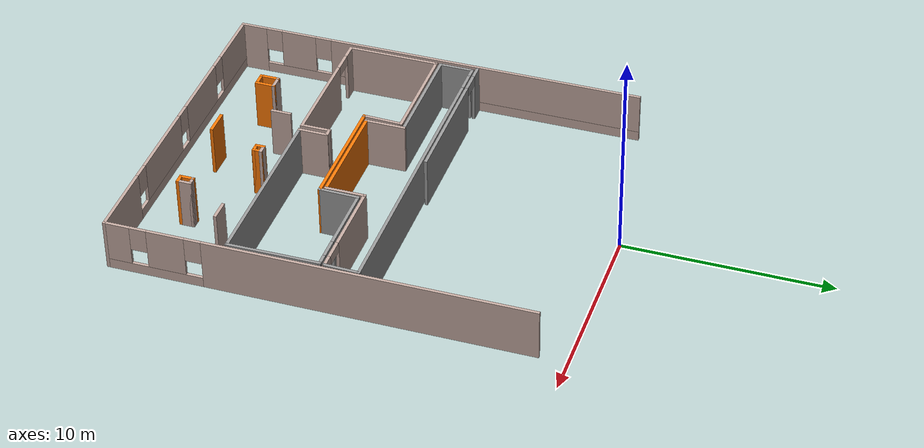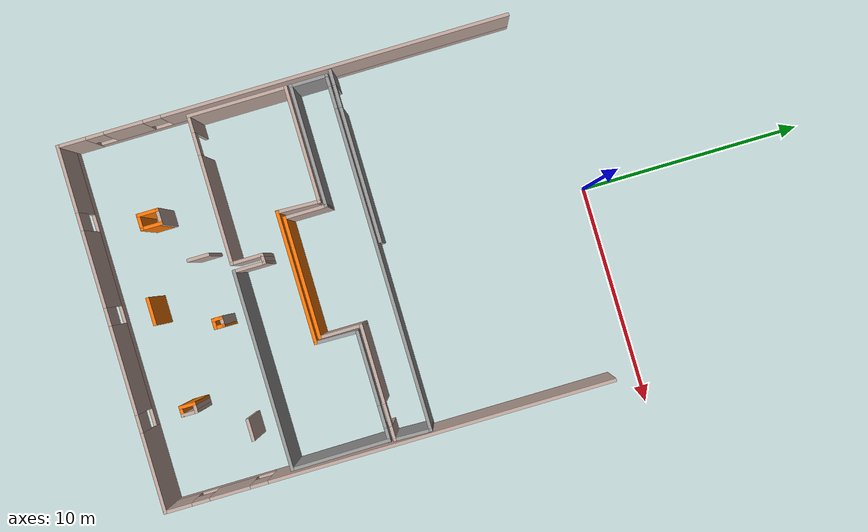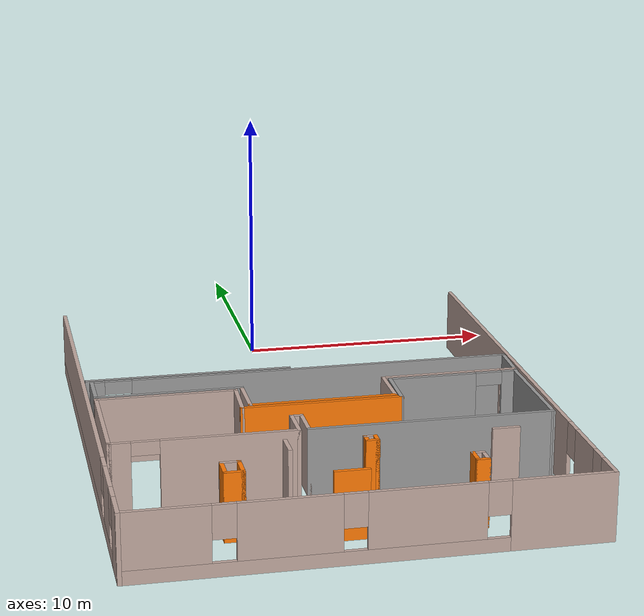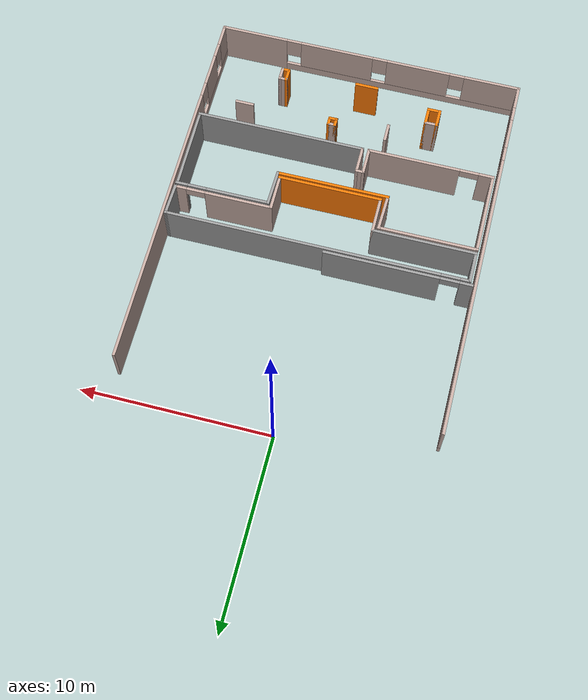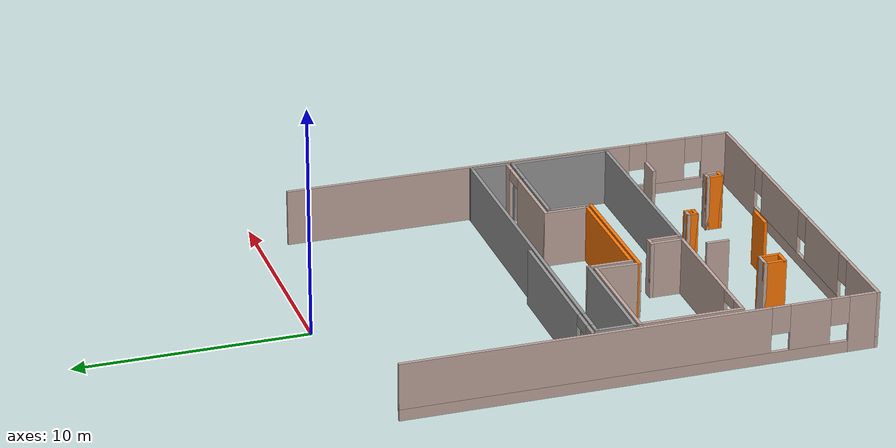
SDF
<sdf version="1.6">
 <model name="Testhaus1">
  <pose>0.163791 -11.4063 0 0 -0 0</pose>
  <link name="Wall_42">
   <pose>-4.19834 2.07704 0 0 -0 3.14159</pose>
   <visual name="Wall_42_Visual_0">
    <pose>-0.852164 0 1.25 0 -0 0</pose>
    <geometry><box><size>6.04567 0.15 2.5</size></box></geometry>
    <material>
     <script><uri>file://media/materials/scripts/gazebo.material</uri><name>Gazebo/Grey</name></script>
     <ambient>1 1 1 1</ambient>
    </material>
    <meta><layer>0</layer></meta>
   </visual>
   <collision name="Wall_42_Collision_0">
    <geometry><box><size>6.04567 0.15 2.5</size></box></geometry>
    <pose>-0.852164 0 1.25 0 -0 0</pose>
   </collision>
   <visual name="Wall_42_Visual_1">
    <pose>3.52284 0 1.25 0 -0 0</pose>
    <geometry><box><size>0.704328 0.15 2.5</size></box></geometry>
    <material>
     <script><uri>file://media/materials/scripts/gazebo.material</uri><name>Gazebo/Grey</name></script>
     <ambient>1 1 1 1</ambient>
    </material>
    <meta><layer>0</layer></meta>
   </visual>
   <collision name="Wall_42_Collision_1">
    <geometry><box><size>0.704328 0.15 2.5</size></box></geometry>
    <pose>3.52284 0 1.25 0 -0 0</pose>
   </collision>
   <visual name="Wall_42_Visual_2">
    <pose>2.67067 0 2.25 0 -0 0</pose>
    <geometry><box><size>1 0.15 0.5</size></box></geometry>
    <material>
     <script><uri>file://media/materials/scripts/gazebo.material</uri><name>Gazebo/Grey</name></script>
     <ambient>1 1 1 1</ambient>
    </material>
    <meta><layer>0</layer></meta>
   </visual>
   <collision name="Wall_42_Collision_2">
    <geometry><box><size>1 0.15 0.5</size></box></geometry>
    <pose>2.67067 0 2.25 0 -0 0</pose>
   </collision>
  </link>
  <link name="Wall_46">
   <pose>0.074614 1.86968 0 0 -0 3.14159</pose>
   <visual name="Wall_46_Visual_0">
    <pose>-0.778187 0 1.25 0 -0 0</pose>
    <geometry><box><size>14.4436 0.15 2.5</size></box></geometry>
    <material>
     <script><uri>file://media/materials/scripts/gazebo.material</uri><name>Gazebo/Grey</name></script>
     <ambient>1 1 1 1</ambient>
    </material>
    <meta><layer>0</layer></meta>
   </visual>
   <collision name="Wall_46_Collision_0">
    <geometry><box><size>14.4436 0.15 2.5</size></box></geometry>
    <pose>-0.778187 0 1.25 0 -0 0</pose>
   </collision>
   <visual name="Wall_46_Visual_1">
    <pose>7.72181 0 1.25 0 -0 0</pose>
    <geometry><box><size>0.556373 0.15 2.5</size></box></geometry>
    <material>
     <script><uri>file://media/materials/scripts/gazebo.material</uri><name>Gazebo/Grey</name></script>
     <ambient>1 1 1 1</ambient>
    </material>
    <meta><layer>0</layer></meta>
   </visual>
   <collision name="Wall_46_Collision_1">
    <geometry><box><size>0.556373 0.15 2.5</size></box></geometry>
    <pose>7.72181 0 1.25 0 -0 0</pose>
   </collision>
   <visual name="Wall_46_Visual_2">
    <pose>6.94363 0 2.25 0 -0 0</pose>
    <geometry><box><size>1 0.15 0.5</size></box></geometry>
    <material>
     <script><uri>file://media/materials/scripts/gazebo.material</uri><name>Gazebo/Grey</name></script>
     <ambient>1 1 1 1</ambient>
    </material>
    <meta><layer>0</layer></meta>
   </visual>
   <collision name="Wall_46_Collision_2">
    <geometry><box><size>1 0.15 0.5</size></box></geometry>
    <pose>6.94363 0 2.25 0 -0 0</pose>
   </collision>
  </link>
  <link name="Wall_47">
   <collision name="Wall_47_Collision">
    <geometry><box><size>1.75 0.15 2.5</size></box></geometry>
    <pose>0 0 1.25 0 -0 0</pose>
   </collision>
   <visual name="Wall_47_Visual">
    <pose>0 0 1.25 0 -0 0</pose>
    <geometry><box><size>1.75 0.15 2.5</size></box></geometry>
    <material>
     <script><uri>file://media/materials/scripts/gazebo.material</uri><name>Gazebo/Grey</name></script>
     <ambient>1 1 1 1</ambient>
    </material>
    <meta><layer>0</layer></meta>
   </visual>
   <pose>-7.85039 1.06968 0 0 -0 -1.5708</pose>
  </link>
  <link name="Wall_48">
   <collision name="Wall_48_Collision">
    <geometry><box><size>5.5 0.15 2.5</size></box></geometry>
    <pose>0 0 1.25 0 -0 0</pose>
   </collision>
   <visual name="Wall_48_Visual">
    <pose>0 0 1.25 0 -0 0</pose>
    <geometry><box><size>5.5 0.15 2.5</size></box></geometry>
    <material>
     <script><uri>file://media/materials/scripts/gazebo.material</uri><name>Gazebo/Grey</name></script>
     <ambient>1 1 1 1</ambient>
    </material>
    <meta><layer>0</layer></meta>
   </visual>
   <pose>-5.17539 0.269681 0 0 -0 0</pose>
  </link>
  <link name="Wall_49">
   <collision name="Wall_49_Collision">
    <geometry><box><size>2 0.15 2.5</size></box></geometry>
    <pose>0 0 1.25 0 -0 0</pose>
   </collision>
   <visual name="Wall_49_Visual">
    <pose>0 0 1.25 0 -0 0</pose>
    <geometry><box><size>2 0.15 2.5</size></box></geometry>
    <material>
     <script><uri>file://media/materials/scripts/gazebo.material</uri><name>Gazebo/Grey</name></script>
     <ambient>0.760784 0.662745 0.627451 1</ambient>
    </material>
    <meta><layer>0</layer></meta>
   </visual>
   <pose>-2.50039 -0.655319 0 0 -0 -1.5708</pose>
  </link>
  <link name="Wall_5">
   <pose>8.175 0 0 0 -0 -1.5708</pose>
   <visual name="Wall_5_Visual_0">
    <pose>-2.33962 0 1.25 0 -0 0</pose>
    <geometry><box><size>15.5708 0.15 2.5</size></box></geometry>
    <material>
     <script><uri>file://media/materials/scripts/gazebo.material</uri><name>Gazebo/Grey</name></script>
     <ambient>0.760784 0.662745 0.627451 1</ambient>
    </material>
    <meta><layer>0</layer></meta>
   </visual>
   <collision name="Wall_5_Collision_0">
    <geometry><box><size>15.5708 0.15 2.5</size></box></geometry>
    <pose>-2.33962 0 1.25 0 -0 0</pose>
   </collision>
   <visual name="Wall_5_Visual_1">
    <pose>7.78538 0 0.25 0 -0 0</pose>
    <geometry><box><size>4.67924 0.15 0.5</size></box></geometry>
    <material>
     <script><uri>file://media/materials/scripts/gazebo.material</uri><name>Gazebo/Grey</name></script>
     <ambient>0.760784 0.662745 0.627451 1</ambient>
    </material>
    <meta><layer>0</layer></meta>
   </visual>
   <collision name="Wall_5_Collision_1">
    <geometry><box><size>4.67924 0.15 0.5</size></box></geometry>
    <pose>7.78538 0 0.25 0 -0 0</pose>
   </collision>
   <visual name="Wall_5_Visual_2">
    <pose>7.14918 0 1.5 0 -0 0</pose>
    <geometry><box><size>1.80682 0.15 2</size></box></geometry>
    <material>
     <script><uri>file://media/materials/scripts/gazebo.material</uri><name>Gazebo/Grey</name></script>
     <ambient>0.760784 0.662745 0.627451 1</ambient>
    </material>
    <meta><layer>0</layer></meta>
   </visual>
   <collision name="Wall_5_Collision_2">
    <geometry><box><size>1.80682 0.15 2</size></box></geometry>
    <pose>7.14918 0 1.5 0 -0 0</pose>
   </collision>
   <visual name="Wall_5_Visual_3">
    <pose>9.48879 0 1.5 0 -0 0</pose>
    <geometry><box><size>1.27241 0.15 2</size></box></geometry>
    <material>
     <script><uri>file://media/materials/scripts/gazebo.material</uri><name>Gazebo/Grey</name></script>
     <ambient>0.760784 0.662745 0.627451 1</ambient>
    </material>
    <meta><layer>0</layer></meta>
   </visual>
   <collision name="Wall_5_Collision_3">
    <geometry><box><size>1.27241 0.15 2</size></box></geometry>
    <pose>9.48879 0 1.5 0 -0 0</pose>
   </collision>
   <visual name="Wall_5_Visual_4">
    <pose>5.84577 0 1.9 0 -0 0</pose>
    <geometry><box><size>0.8 0.15 1.2</size></box></geometry>
    <material>
     <script><uri>file://media/materials/scripts/gazebo.material</uri><name>Gazebo/Grey</name></script>
     <ambient>0.760784 0.662745 0.627451 1</ambient>
    </material>
    <meta><layer>0</layer></meta>
   </visual>
   <collision name="Wall_5_Collision_4">
    <geometry><box><size>0.8 0.15 1.2</size></box></geometry>
    <pose>5.84577 0 1.9 0 -0 0</pose>
   </collision>
   <visual name="Wall_5_Visual_5">
    <pose>8.45259 0 1.9 0 -0 0</pose>
    <geometry><box><size>0.8 0.15 1.2</size></box></geometry>
    <material>
     <script><uri>file://media/materials/scripts/gazebo.material</uri><name>Gazebo/Grey</name></script>
     <ambient>0.760784 0.662745 0.627451 1</ambient>
    </material>
    <meta><layer>0</layer></meta>
   </visual>
   <collision name="Wall_5_Collision_5">
    <geometry><box><size>0.8 0.15 1.2</size></box></geometry>
    <pose>8.45259 0 1.9 0 -0 0</pose>
   </collision>
  </link>
  <link name="Wall_50">
   <collision name="Wall_50_Collision">
    <geometry><box><size>5.5 0.15 2.5</size></box></geometry>
    <pose>0 0 1.25 0 -0 0</pose>
   </collision>
   <visual name="Wall_50_Visual">
    <pose>0 0 1.25 0 -0 0</pose>
    <geometry><box><size>5.5 0.15 2.5</size></box></geometry>
    <material>
     <script><uri>file://media/materials/scripts/gazebo.material</uri><name>Gazebo/Grey</name></script>
     <ambient>0.996078 0.47451 0.0196078 1</ambient>
    </material>
    <meta><layer>0</layer></meta>
   </visual>
   <pose>0.174614 -1.58032 0 0 -0 0</pose>
  </link>
  <link name="Wall_51">
   <collision name="Wall_51_Collision">
    <geometry><box><size>2 0.15 2.5</size></box></geometry>
    <pose>0 0 1.25 0 -0 0</pose>
   </collision>
   <visual name="Wall_51_Visual">
    <pose>0 0 1.25 0 -0 0</pose>
    <geometry><box><size>2 0.15 2.5</size></box></geometry>
    <material>
     <script><uri>file://media/materials/scripts/gazebo.material</uri><name>Gazebo/Grey</name></script>
     <ambient>0.760784 0.662745 0.627451 1</ambient>
    </material>
    <meta><layer>0</layer></meta>
   </visual>
   <pose>2.84961 -0.655319 0 0 -0 1.5708</pose>
  </link>
  <link name="Wall_52">
   <pose>5.39961 0.269681 0 0 -0 0</pose>
   <visual name="Wall_52_Visual_0">
    <pose>-0.83176 0 1.25 0 -0 0</pose>
    <geometry><box><size>3.58648 0.15 2.5</size></box></geometry>
    <material>
     <script><uri>file://media/materials/scripts/gazebo.material</uri><name>Gazebo/Grey</name></script>
     <ambient>0.760784 0.662745 0.627451 1</ambient>
    </material>
    <meta><layer>0</layer></meta>
   </visual>
   <collision name="Wall_52_Collision_0">
    <geometry><box><size>3.58648 0.15 2.5</size></box></geometry>
    <pose>-0.83176 0 1.25 0 -0 0</pose>
   </collision>
   <visual name="Wall_52_Visual_1">
    <pose>2.29324 0 1.25 0 -0 0</pose>
    <geometry><box><size>0.663519 0.15 2.5</size></box></geometry>
    <material>
     <script><uri>file://media/materials/scripts/gazebo.material</uri><name>Gazebo/Grey</name></script>
     <ambient>0.760784 0.662745 0.627451 1</ambient>
    </material>
    <meta><layer>0</layer></meta>
   </visual>
   <collision name="Wall_52_Collision_1">
    <geometry><box><size>0.663519 0.15 2.5</size></box></geometry>
    <pose>2.29324 0 1.25 0 -0 0</pose>
   </collision>
   <visual name="Wall_52_Visual_2">
    <pose>1.46148 0 2.25 0 -0 0</pose>
    <geometry><box><size>1 0.15 0.5</size></box></geometry>
    <material>
     <script><uri>file://media/materials/scripts/gazebo.material</uri><name>Gazebo/Grey</name></script>
     <ambient>0.760784 0.662745 0.627451 1</ambient>
    </material>
    <meta><layer>0</layer></meta>
   </visual>
   <collision name="Wall_52_Collision_2">
    <geometry><box><size>1 0.15 0.5</size></box></geometry>
    <pose>1.46148 0 2.25 0 -0 0</pose>
   </collision>
  </link>
  <link name="Wall_53">
   <collision name="Wall_53_Collision">
    <geometry><box><size>1.75078 0.15 2.5</size></box></geometry>
    <pose>0 0 1.25 0 -0 0</pose>
   </collision>
   <visual name="Wall_53_Visual">
    <pose>0 0 1.25 0 -0 0</pose>
    <geometry><box><size>1.75078 0.15 2.5</size></box></geometry>
    <material>
     <script><uri>file://media/materials/scripts/gazebo.material</uri><name>Gazebo/Grey</name></script>
     <ambient>1 1 1 1</ambient>
    </material>
    <meta><layer>0</layer></meta>
   </visual>
   <pose>7.97461 1.06968 0 0 -0 1.53956</pose>
  </link>
  <link name="Wall_56">
   <collision name="Wall_56_Collision">
    <geometry><box><size>5.25 0.15 2.5</size></box></geometry>
    <pose>0 0 1.25 0 -0 0</pose>
   </collision>
   <visual name="Wall_56_Visual">
    <pose>0 0 1.25 0 -0 0</pose>
    <geometry><box><size>5.25 0.15 2.5</size></box></geometry>
    <material>
     <script><uri>file://media/materials/scripts/gazebo.material</uri><name>Gazebo/Grey</name></script>
     <ambient>0.760784 0.662745 0.627451 1</ambient>
    </material>
    <meta><layer>0</layer></meta>
   </visual>
   <pose>-5.31111 0.045204 0 0 -0 3.14159</pose>
  </link>
  <link name="Wall_57">
   <collision name="Wall_57_Collision">
    <geometry><box><size>4.5 0.15 2.5</size></box></geometry>
    <pose>0 0 1.25 0 -0 0</pose>
   </collision>
   <visual name="Wall_57_Visual">
    <pose>0 0 1.25 0 -0 0</pose>
    <geometry><box><size>4.5 0.15 2.5</size></box></geometry>
    <material>
     <script><uri>file://media/materials/scripts/gazebo.material</uri><name>Gazebo/Grey</name></script>
     <ambient>0.760784 0.662745 0.627451 1</ambient>
    </material>
    <meta><layer>0</layer></meta>
   </visual>
   <pose>-7.86111 -2.1298 0 0 -0 -1.5708</pose>
  </link>
  <link name="Wall_58">
   <pose>-4.56111 -4.3048 0 0 -0 0</pose>
   <visual name="Wall_58_Visual_0">
    <pose>-2.96185 0 1.25 0 -0 0</pose>
    <geometry><box><size>0.826301 0.15 2.5</size></box></geometry>
    <material>
     <script><uri>file://media/materials/scripts/gazebo.material</uri><name>Gazebo/Grey</name></script>
     <ambient>0.760784 0.662745 0.627451 1</ambient>
    </material>
    <meta><layer>0</layer></meta>
   </visual>
   <collision name="Wall_58_Collision_0">
    <geometry><box><size>0.826301 0.15 2.5</size></box></geometry>
    <pose>-2.96185 0 1.25 0 -0 0</pose>
   </collision>
   <visual name="Wall_58_Visual_1">
    <pose>0.913151 0 1.25 0 -0 0</pose>
    <geometry><box><size>4.9237 0.15 2.5</size></box></geometry>
    <material>
     <script><uri>file://media/materials/scripts/gazebo.material</uri><name>Gazebo/Grey</name></script>
     <ambient>0.760784 0.662745 0.627451 1</ambient>
    </material>
    <meta><layer>0</layer></meta>
   </visual>
   <collision name="Wall_58_Collision_1">
    <geometry><box><size>4.9237 0.15 2.5</size></box></geometry>
    <pose>0.913151 0 1.25 0 -0 0</pose>
   </collision>
   <visual name="Wall_58_Visual_2">
    <pose>-2.0487 0 2.25 0 -0 0</pose>
    <geometry><box><size>1 0.15 0.5</size></box></geometry>
    <material>
     <script><uri>file://media/materials/scripts/gazebo.material</uri><name>Gazebo/Grey</name></script>
     <ambient>0.760784 0.662745 0.627451 1</ambient>
    </material>
    <meta><layer>0</layer></meta>
   </visual>
   <collision name="Wall_58_Collision_2">
    <geometry><box><size>1 0.15 0.5</size></box></geometry>
    <pose>-2.0487 0 2.25 0 -0 0</pose>
   </collision>
  </link>
  <link name="Wall_59">
   <collision name="Wall_59_Collision">
    <geometry><box><size>1.5 0.15 2.5</size></box></geometry>
    <pose>0 0 1.25 0 -0 0</pose>
   </collision>
   <visual name="Wall_59_Visual">
    <pose>0 0 1.25 0 -0 0</pose>
    <geometry><box><size>1.5 0.15 2.5</size></box></geometry>
    <material>
     <script><uri>file://media/materials/scripts/gazebo.material</uri><name>Gazebo/Grey</name></script>
     <ambient>0.760784 0.662745 0.627451 1</ambient>
    </material>
    <meta><layer>0</layer></meta>
   </visual>
   <pose>-1.2611 -3.6298 0 0 -0 1.5708</pose>
  </link>
  <link name="Wall_6">
   <pose>-0 -10.05 0 0 -0 3.14159</pose>
   <visual name="Wall_6_Visual_0">
    <pose>-6.43863 0 1.25 0 -0 0</pose>
    <geometry><box><size>3.62273 0.15 2.5</size></box></geometry>
    <material>
     <script><uri>file://media/materials/scripts/gazebo.material</uri><name>Gazebo/Grey</name></script>
     <ambient>0.760784 0.662745 0.627451 1</ambient>
    </material>
    <meta><layer>0</layer></meta>
   </visual>
   <collision name="Wall_6_Collision_0">
    <geometry><box><size>3.62273 0.15 2.5</size></box></geometry>
    <pose>-6.43863 0 1.25 0 -0 0</pose>
   </collision>
   <visual name="Wall_6_Visual_1">
    <pose>1.81137 0 0.25 0 -0 0</pose>
    <geometry><box><size>12.8773 0.15 0.5</size></box></geometry>
    <material>
     <script><uri>file://media/materials/scripts/gazebo.material</uri><name>Gazebo/Grey</name></script>
     <ambient>0.760784 0.662745 0.627451 1</ambient>
    </material>
    <meta><layer>0</layer></meta>
   </visual>
   <collision name="Wall_6_Collision_1">
    <geometry><box><size>12.8773 0.15 0.5</size></box></geometry>
    <pose>1.81137 0 0.25 0 -0 0</pose>
   </collision>
   <visual name="Wall_6_Visual_2">
    <pose>-1.83325 0 1.5 0 -0 0</pose>
    <geometry><box><size>3.98804 0.15 2</size></box></geometry>
    <material>
     <script><uri>file://media/materials/scripts/gazebo.material</uri><name>Gazebo/Grey</name></script>
     <ambient>0.760784 0.662745 0.627451 1</ambient>
    </material>
    <meta><layer>0</layer></meta>
   </visual>
   <collision name="Wall_6_Collision_2">
    <geometry><box><size>3.98804 0.15 2</size></box></geometry>
    <pose>-1.83325 0 1.5 0 -0 0</pose>
   </collision>
   <visual name="Wall_6_Visual_3">
    <pose>2.68878 0 1.5 0 -0 0</pose>
    <geometry><box><size>3.45603 0.15 2</size></box></geometry>
    <material>
     <script><uri>file://media/materials/scripts/gazebo.material</uri><name>Gazebo/Grey</name></script>
     <ambient>0.760784 0.662745 0.627451 1</ambient>
    </material>
    <meta><layer>0</layer></meta>
   </visual>
   <collision name="Wall_6_Collision_3">
    <geometry><box><size>3.45603 0.15 2</size></box></geometry>
    <pose>2.68878 0 1.5 0 -0 0</pose>
   </collision>
   <visual name="Wall_6_Visual_4">
    <pose>6.7334 0 1.5 0 -0 0</pose>
    <geometry><box><size>3.0332 0.15 2</size></box></geometry>
    <material>
     <script><uri>file://media/materials/scripts/gazebo.material</uri><name>Gazebo/Grey</name></script>
     <ambient>0.760784 0.662745 0.627451 1</ambient>
    </material>
    <meta><layer>0</layer></meta>
   </visual>
   <collision name="Wall_6_Collision_4">
    <geometry><box><size>3.0332 0.15 2</size></box></geometry>
    <pose>6.7334 0 1.5 0 -0 0</pose>
   </collision>
   <visual name="Wall_6_Visual_5">
    <pose>-4.22727 0 1.9 0 -0 0</pose>
    <geometry><box><size>0.8 0.15 1.2</size></box></geometry>
    <material>
     <script><uri>file://media/materials/scripts/gazebo.material</uri><name>Gazebo/Grey</name></script>
     <ambient>0.760784 0.662745 0.627451 1</ambient>
    </material>
    <meta><layer>0</layer></meta>
   </visual>
   <collision name="Wall_6_Collision_5">
    <geometry><box><size>0.8 0.15 1.2</size></box></geometry>
    <pose>-4.22727 0 1.9 0 -0 0</pose>
   </collision>
   <visual name="Wall_6_Visual_6">
    <pose>0.560768 0 1.9 0 -0 0</pose>
    <geometry><box><size>0.8 0.15 1.2</size></box></geometry>
    <material>
     <script><uri>file://media/materials/scripts/gazebo.material</uri><name>Gazebo/Grey</name></script>
     <ambient>0.760784 0.662745 0.627451 1</ambient>
    </material>
    <meta><layer>0</layer></meta>
   </visual>
   <collision name="Wall_6_Collision_6">
    <geometry><box><size>0.8 0.15 1.2</size></box></geometry>
    <pose>0.560768 0 1.9 0 -0 0</pose>
   </collision>
   <visual name="Wall_6_Visual_7">
    <pose>4.8168 0 1.9 0 -0 0</pose>
    <geometry><box><size>0.8 0.15 1.2</size></box></geometry>
    <material>
     <script><uri>file://media/materials/scripts/gazebo.material</uri><name>Gazebo/Grey</name></script>
     <ambient>0.760784 0.662745 0.627451 1</ambient>
    </material>
    <meta><layer>0</layer></meta>
   </visual>
   <collision name="Wall_6_Collision_7">
    <geometry><box><size>0.8 0.15 1.2</size></box></geometry>
    <pose>4.8168 0 1.9 0 -0 0</pose>
   </collision>
  </link>
  <link name="Wall_60">
   <collision name="Wall_60_Collision">
    <geometry><box><size>0.5 0.15 2.5</size></box></geometry>
    <pose>0 0 1.25 0 -0 0</pose>
   </collision>
   <visual name="Wall_60_Visual">
    <pose>0 0 1.25 0 -0 0</pose>
    <geometry><box><size>0.5 0.15 2.5</size></box></geometry>
    <material>
     <script><uri>file://media/materials/scripts/gazebo.material</uri><name>Gazebo/Grey</name></script>
     <ambient>0.760784 0.662745 0.627451 1</ambient>
    </material>
    <meta><layer>0</layer></meta>
   </visual>
   <pose>-1.08611 -2.9548 0 0 -0 0</pose>
  </link>
  <link name="Wall_61">
   <collision name="Wall_61_Collision">
    <geometry><box><size>1.5 0.15 2.5</size></box></geometry>
    <pose>0 0 1.25 0 -0 0</pose>
   </collision>
   <visual name="Wall_61_Visual">
    <pose>0 0 1.25 0 -0 0</pose>
    <geometry><box><size>1.5 0.15 2.5</size></box></geometry>
    <material>
     <script><uri>file://media/materials/scripts/gazebo.material</uri><name>Gazebo/Grey</name></script>
     <ambient>0.760784 0.662745 0.627451 1</ambient>
    </material>
    <meta><layer>0</layer></meta>
   </visual>
   <pose>-0.911105 -3.6298 0 0 -0 -1.5708</pose>
  </link>
  <link name="Wall_62">
   <collision name="Wall_62_Collision">
    <geometry><box><size>9 0.15 2.5</size></box></geometry>
    <pose>0 0 1.25 0 -0 0</pose>
   </collision>
   <visual name="Wall_62_Visual">
    <pose>0 0 1.25 0 -0 0</pose>
    <geometry><box><size>9 0.15 2.5</size></box></geometry>
    <material>
     <script><uri>file://media/materials/scripts/gazebo.material</uri><name>Gazebo/Grey</name></script>
     <ambient>1 1 1 1</ambient>
    </material>
    <meta><layer>0</layer></meta>
   </visual>
   <pose>3.5139 -4.3048 0 0 -0 0</pose>
  </link>
  <link name="Wall_65">
   <collision name="Wall_65_Collision">
    <geometry><box><size>4.49345 0.15 2.5</size></box></geometry>
    <pose>0 0 1.25 0 -0 0</pose>
   </collision>
   <visual name="Wall_65_Visual">
    <pose>0 0 1.25 0 -0 0</pose>
    <geometry><box><size>4.49345 0.15 2.5</size></box></geometry>
    <material>
     <script><uri>file://media/materials/scripts/gazebo.material</uri><name>Gazebo/Grey</name></script>
     <ambient>1 1 1 1</ambient>
    </material>
    <meta><layer>0</layer></meta>
   </visual>
   <pose>7.92369 -2.13313 0 0 -0 1.5778</pose>
  </link>
  <link name="Wall_66">
   <pose>5.51389 0.038544 0 0 -0 3.14159</pose>
   <visual name="Wall_66_Visual_0">
    <pose>-2.1736 0 1.25 0 -0 0</pose>
    <geometry><box><size>0.6528 0.15 2.5</size></box></geometry>
    <material>
     <script><uri>file://media/materials/scripts/gazebo.material</uri><name>Gazebo/Grey</name></script>
     <ambient>1 1 1 1</ambient>
    </material>
    <meta><layer>0</layer></meta>
   </visual>
   <collision name="Wall_66_Collision_0">
    <geometry><box><size>0.6528 0.15 2.5</size></box></geometry>
    <pose>-2.1736 0 1.25 0 -0 0</pose>
   </collision>
   <visual name="Wall_66_Visual_1">
    <pose>0.8264 0 1.25 0 -0 0</pose>
    <geometry><box><size>3.3472 0.15 2.5</size></box></geometry>
    <material>
     <script><uri>file://media/materials/scripts/gazebo.material</uri><name>Gazebo/Grey</name></script>
     <ambient>1 1 1 1</ambient>
    </material>
    <meta><layer>0</layer></meta>
   </visual>
   <collision name="Wall_66_Collision_1">
    <geometry><box><size>3.3472 0.15 2.5</size></box></geometry>
    <pose>0.8264 0 1.25 0 -0 0</pose>
   </collision>
   <visual name="Wall_66_Visual_2">
    <pose>-1.3472 0 2.25 0 -0 0</pose>
    <geometry><box><size>1 0.15 0.5</size></box></geometry>
    <material>
     <script><uri>file://media/materials/scripts/gazebo.material</uri><name>Gazebo/Grey</name></script>
     <ambient>1 1 1 1</ambient>
    </material>
    <meta><layer>0</layer></meta>
   </visual>
   <collision name="Wall_66_Collision_2">
    <geometry><box><size>1 0.15 0.5</size></box></geometry>
    <pose>-1.3472 0 2.25 0 -0 0</pose>
   </collision>
  </link>
  <link name="Wall_67">
   <collision name="Wall_67_Collision">
    <geometry><box><size>1.99335 0.15 2.5</size></box></geometry>
    <pose>0 0 1.25 0 -0 0</pose>
   </collision>
   <visual name="Wall_67_Visual">
    <pose>0 0 1.25 0 -0 0</pose>
    <geometry><box><size>1.99335 0.15 2.5</size></box></geometry>
    <material>
     <script><uri>file://media/materials/scripts/gazebo.material</uri><name>Gazebo/Grey</name></script>
     <ambient>1 1 1 1</ambient>
    </material>
    <meta><layer>0</layer></meta>
   </visual>
   <pose>3.03871 -0.883126 0 0 -0 -1.59224</pose>
  </link>
  <link name="Wall_68">
   <collision name="Wall_68_Collision">
    <geometry><box><size>6 0.15 2.5</size></box></geometry>
    <pose>0 0 1.25 0 -0 0</pose>
   </collision>
   <visual name="Wall_68_Visual">
    <pose>0 0 1.25 0 -0 0</pose>
    <geometry><box><size>6 0.15 2.5</size></box></geometry>
    <material>
     <script><uri>file://media/materials/scripts/gazebo.material</uri><name>Gazebo/Grey</name></script>
     <ambient>0.996078 0.47451 0.0196078 1</ambient>
    </material>
    <meta><layer>0</layer></meta>
   </visual>
   <pose>0.093934 -1.8048 0 0 -0 3.14159</pose>
  </link>
  <link name="Wall_7">
   <pose>-8.175 0 0 0 -0 1.5708</pose>
   <visual name="Wall_7_Visual_0">
    <pose>-9.46219 0 1.25 0 -0 0</pose>
    <geometry><box><size>1.32562 0.15 2.5</size></box></geometry>
    <material>
     <script><uri>file://media/materials/scripts/gazebo.material</uri><name>Gazebo/Grey</name></script>
     <ambient>0.760784 0.662745 0.627451 1</ambient>
    </material>
    <meta><layer>0</layer></meta>
   </visual>
   <collision name="Wall_7_Collision_0">
    <geometry><box><size>1.32562 0.15 2.5</size></box></geometry>
    <pose>-9.46219 0 1.25 0 -0 0</pose>
   </collision>
   <visual name="Wall_7_Visual_1">
    <pose>0.662808 0 0.25 0 -0 0</pose>
    <geometry><box><size>18.9244 0.15 0.5</size></box></geometry>
    <material>
     <script><uri>file://media/materials/scripts/gazebo.material</uri><name>Gazebo/Grey</name></script>
     <ambient>0.760784 0.662745 0.627451 1</ambient>
    </material>
    <meta><layer>0</layer></meta>
   </visual>
   <collision name="Wall_7_Collision_1">
    <geometry><box><size>18.9244 0.15 0.5</size></box></geometry>
    <pose>0.662808 0 0.25 0 -0 0</pose>
   </collision>
   <visual name="Wall_7_Visual_2">
    <pose>-7.12258 0 1.5 0 -0 0</pose>
    <geometry><box><size>1.75362 0.15 2</size></box></geometry>
    <material>
     <script><uri>file://media/materials/scripts/gazebo.material</uri><name>Gazebo/Grey</name></script>
     <ambient>0.760784 0.662745 0.627451 1</ambient>
    </material>
    <meta><layer>0</layer></meta>
   </visual>
   <collision name="Wall_7_Collision_2">
    <geometry><box><size>1.75362 0.15 2</size></box></geometry>
    <pose>-7.12258 0 1.5 0 -0 0</pose>
   </collision>
   <visual name="Wall_7_Visual_3">
    <pose>2.33962 0 1.5 0 -0 0</pose>
    <geometry><box><size>15.5708 0.15 2</size></box></geometry>
    <material>
     <script><uri>file://media/materials/scripts/gazebo.material</uri><name>Gazebo/Grey</name></script>
     <ambient>0.760784 0.662745 0.627451 1</ambient>
    </material>
    <meta><layer>0</layer></meta>
   </visual>
   <collision name="Wall_7_Collision_3">
    <geometry><box><size>15.5708 0.15 2</size></box></geometry>
    <pose>2.33962 0 1.5 0 -0 0</pose>
   </collision>
   <visual name="Wall_7_Visual_4">
    <pose>-8.39938 0 1.9 0 -0 0</pose>
    <geometry><box><size>0.8 0.15 1.2</size></box></geometry>
    <material>
     <script><uri>file://media/materials/scripts/gazebo.material</uri><name>Gazebo/Grey</name></script>
     <ambient>0.760784 0.662745 0.627451 1</ambient>
    </material>
    <meta><layer>0</layer></meta>
   </visual>
   <collision name="Wall_7_Collision_4">
    <geometry><box><size>0.8 0.15 1.2</size></box></geometry>
    <pose>-8.39938 0 1.9 0 -0 0</pose>
   </collision>
   <visual name="Wall_7_Visual_5">
    <pose>-5.84577 0 1.9 0 -0 0</pose>
    <geometry><box><size>0.8 0.15 1.2</size></box></geometry>
    <material>
     <script><uri>file://media/materials/scripts/gazebo.material</uri><name>Gazebo/Grey</name></script>
     <ambient>0.760784 0.662745 0.627451 1</ambient>
    </material>
    <meta><layer>0</layer></meta>
   </visual>
   <collision name="Wall_7_Collision_5">
    <geometry><box><size>0.8 0.15 1.2</size></box></geometry>
    <pose>-5.84577 0 1.9 0 -0 0</pose>
   </collision>
  </link>
  <link name="Wall_70">
   <collision name="Wall_70_Collision">
    <geometry><box><size>2.00132 0.15 2.5</size></box></geometry>
    <pose>0 0 1.25 0 -0 0</pose>
   </collision>
   <visual name="Wall_70_Visual">
    <pose>0 0 1.25 0 -0 0</pose>
    <geometry><box><size>2.00132 0.15 2.5</size></box></geometry>
    <material>
     <script><uri>file://media/materials/scripts/gazebo.material</uri><name>Gazebo/Grey</name></script>
     <ambient>0.760784 0.662745 0.627451 1</ambient>
    </material>
    <meta><layer>0</layer></meta>
   </visual>
   <pose>-2.79609 -0.879796 0 0 -0 -1.60859</pose>
  </link>
  <link name="Wall_72">
   <collision name="Wall_72_Collision">
    <geometry><box><size>1 0.15 2.5</size></box></geometry>
    <pose>0 0 1.25 0 -0 0</pose>
   </collision>
   <visual name="Wall_72_Visual">
    <pose>0 0 1.25 0 -0 0</pose>
    <geometry><box><size>1 0.15 2.5</size></box></geometry>
    <material>
     <script><uri>file://media/materials/scripts/gazebo.material</uri><name>Gazebo/Grey</name></script>
     <ambient>0.996078 0.47451 0.0196078 1</ambient>
    </material>
    <meta><layer>0</layer></meta>
   </visual>
   <pose>-4.37539 -7.14965 0 0 -0 -1.5708</pose>
  </link>
  <link name="Wall_73">
   <collision name="Wall_73_Collision">
    <geometry><box><size>0.75 0.15 2.5</size></box></geometry>
    <pose>0 0 1.25 0 -0 0</pose>
   </collision>
   <visual name="Wall_73_Visual">
    <pose>0 0 1.25 0 -0 0</pose>
    <geometry><box><size>0.75 0.15 2.5</size></box></geometry>
    <material>
     <script><uri>file://media/materials/scripts/gazebo.material</uri><name>Gazebo/Grey</name></script>
     <ambient>0.996078 0.47451 0.0196078 1</ambient>
    </material>
    <meta><layer>0</layer></meta>
   </visual>
   <pose>-4.07539 -7.57465 0 0 -0 0</pose>
  </link>
  <link name="Wall_74">
   <collision name="Wall_74_Collision">
    <geometry><box><size>1 0.15 2.5</size></box></geometry>
    <pose>0 0 1.25 0 -0 0</pose>
   </collision>
   <visual name="Wall_74_Visual">
    <pose>0 0 1.25 0 -0 0</pose>
    <geometry><box><size>1 0.15 2.5</size></box></geometry>
    <material>
     <script><uri>file://media/materials/scripts/gazebo.material</uri><name>Gazebo/Grey</name></script>
     <ambient>0.996078 0.47451 0.0196078 1</ambient>
    </material>
    <meta><layer>0</layer></meta>
   </visual>
   <pose>-3.77539 -7.14965 0 0 -0 1.5708</pose>
  </link>
  <link name="Wall_75">
   <collision name="Wall_75_Collision">
    <geometry><box><size>0.75 0.15 2.5</size></box></geometry>
    <pose>0 0 1.25 0 -0 0</pose>
   </collision>
   <visual name="Wall_75_Visual">
    <pose>0 0 1.25 0 -0 0</pose>
    <geometry><box><size>0.75 0.15 2.5</size></box></geometry>
    <material>
     <script><uri>file://media/materials/scripts/gazebo.material</uri><name>Gazebo/Grey</name></script>
     <ambient>0.760784 0.662745 0.627451 1</ambient>
    </material>
    <meta><layer>0</layer></meta>
   </visual>
   <pose>-4.07539 -6.72465 0 0 -0 3.14159</pose>
  </link>
  <link name="Wall_77">
   <collision name="Wall_77_Collision">
    <geometry><box><size>0.5 0.15 2.5</size></box></geometry>
    <pose>0 0 1.25 0 -0 0</pose>
   </collision>
   <visual name="Wall_77_Visual">
    <pose>0 0 1.25 0 -0 0</pose>
    <geometry><box><size>0.5 0.15 2.5</size></box></geometry>
    <material>
     <script><uri>file://media/materials/scripts/gazebo.material</uri><name>Gazebo/Grey</name></script>
     <ambient>0.996078 0.47451 0.0196078 1</ambient>
    </material>
    <meta><layer>0</layer></meta>
   </visual>
   <pose>0.838252 -5.56964 0 0 -0 -1.5708</pose>
  </link>
  <link name="Wall_78">
   <collision name="Wall_78_Collision">
    <geometry><box><size>0.5 0.15 2.5</size></box></geometry>
    <pose>0 0 1.25 0 -0 0</pose>
   </collision>
   <visual name="Wall_78_Visual">
    <pose>0 0 1.25 0 -0 0</pose>
    <geometry><box><size>0.5 0.15 2.5</size></box></geometry>
    <material>
     <script><uri>file://media/materials/scripts/gazebo.material</uri><name>Gazebo/Grey</name></script>
     <ambient>0.996078 0.47451 0.0196078 1</ambient>
    </material>
    <meta><layer>0</layer></meta>
   </visual>
   <pose>1.01325 -5.74464 0 0 -0 0</pose>
  </link>
  <link name="Wall_81">
   <collision name="Wall_81_Collision">
    <geometry><box><size>0.5 0.15 2.5</size></box></geometry>
    <pose>0 0 1.25 0 -0 0</pose>
   </collision>
   <visual name="Wall_81_Visual">
    <pose>0 0 1.25 0 -0 0</pose>
    <geometry><box><size>0.5 0.15 2.5</size></box></geometry>
    <material>
     <script><uri>file://media/materials/scripts/gazebo.material</uri><name>Gazebo/Grey</name></script>
     <ambient>0.996078 0.47451 0.0196078 1</ambient>
    </material>
    <meta><layer>0</layer></meta>
   </visual>
   <pose>1.18825 -5.56964 0 0 -0 1.5708</pose>
  </link>
  <link name="Wall_82">
   <collision name="Wall_82_Collision">
    <geometry><box><size>0.5 0.15 2.5</size></box></geometry>
    <pose>0 0 1.25 0 -0 0</pose>
   </collision>
   <visual name="Wall_82_Visual">
    <pose>0 0 1.25 0 -0 0</pose>
    <geometry><box><size>0.5 0.15 2.5</size></box></geometry>
    <material>
     <script><uri>file://media/materials/scripts/gazebo.material</uri><name>Gazebo/Grey</name></script>
     <ambient>0.760784 0.662745 0.627451 1</ambient>
    </material>
    <meta><layer>0</layer></meta>
   </visual>
   <pose>1.01325 -5.39464 0 0 -0 3.14159</pose>
  </link>
  <link name="Wall_84">
   <collision name="Wall_84_Collision">
    <geometry><box><size>0.75 0.15 2.5</size></box></geometry>
    <pose>0 0 1.25 0 -0 0</pose>
   </collision>
   <visual name="Wall_84_Visual">
    <pose>0 0 1.25 0 -0 0</pose>
    <geometry><box><size>0.75 0.15 2.5</size></box></geometry>
    <material>
     <script><uri>file://media/materials/scripts/gazebo.material</uri><name>Gazebo/Grey</name></script>
     <ambient>0.996078 0.47451 0.0196078 1</ambient>
    </material>
    <meta><layer>0</layer></meta>
   </visual>
   <pose>4.04748 -7.84615 0 0 -0 1.5708</pose>
  </link>
  <link name="Wall_85">
   <collision name="Wall_85_Collision">
    <geometry><box><size>0.5 0.15 2.5</size></box></geometry>
    <pose>0 0 1.25 0 -0 0</pose>
   </collision>
   <visual name="Wall_85_Visual">
    <pose>0 0 1.25 0 -0 0</pose>
    <geometry><box><size>0.5 0.15 2.5</size></box></geometry>
    <material>
     <script><uri>file://media/materials/scripts/gazebo.material</uri><name>Gazebo/Grey</name></script>
     <ambient>0.760784 0.662745 0.627451 1</ambient>
    </material>
    <meta><layer>0</layer></meta>
   </visual>
   <pose>4.22248 -7.54615 0 0 -0 0</pose>
  </link>
  <link name="Wall_86">
   <collision name="Wall_86_Collision">
    <geometry><box><size>0.75 0.15 2.5</size></box></geometry>
    <pose>0 0 1.25 0 -0 0</pose>
   </collision>
   <visual name="Wall_86_Visual">
    <pose>0 0 1.25 0 -0 0</pose>
    <geometry><box><size>0.75 0.15 2.5</size></box></geometry>
    <material>
     <script><uri>file://media/materials/scripts/gazebo.material</uri><name>Gazebo/Grey</name></script>
     <ambient>0.760784 0.662745 0.627451 1</ambient>
    </material>
    <meta><layer>0</layer></meta>
   </visual>
   <pose>4.39748 -7.84615 0 0 -0 -1.5708</pose>
  </link>
  <link name="Wall_87">
   <collision name="Wall_87_Collision">
    <geometry><box><size>0.5 0.15 2.5</size></box></geometry>
    <pose>0 0 1.25 0 -0 0</pose>
   </collision>
   <visual name="Wall_87_Visual">
    <pose>0 0 1.25 0 -0 0</pose>
    <geometry><box><size>0.5 0.15 2.5</size></box></geometry>
    <material>
     <script><uri>file://media/materials/scripts/gazebo.material</uri><name>Gazebo/Grey</name></script>
     <ambient>0.996078 0.47451 0.0196078 1</ambient>
    </material>
    <meta><layer>0</layer></meta>
   </visual>
   <pose>4.22248 -8.14615 0 0 -0 3.14159</pose>
  </link>
  <link name="Wall_89">
   <collision name="Wall_89_Collision">
    <geometry><box><size>1.25 0.15 2.5</size></box></geometry>
    <pose>0 0 1.25 0 -0 0</pose>
   </collision>
   <visual name="Wall_89_Visual">
    <pose>0 0 1.25 0 -0 0</pose>
    <geometry><box><size>1.25 0.15 2.5</size></box></geometry>
    <material>
     <script><uri>file://media/materials/scripts/gazebo.material</uri><name>Gazebo/Grey</name></script>
     <ambient>0.996078 0.47451 0.0196078 1</ambient>
    </material>
    <meta><layer>0</layer></meta>
   </visual>
   <pose>-0.259947 -8.19241 0 0 -0 0</pose>
  </link>
  <link name="Wall_91">
   <collision name="Wall_91_Collision">
    <geometry><box><size>1 0.15 2.5</size></box></geometry>
    <pose>0 0 1.25 0 -0 0</pose>
   </collision>
   <visual name="Wall_91_Visual">
    <pose>0 0 1.25 0 -0 0</pose>
    <geometry><box><size>1 0.15 2.5</size></box></geometry>
    <material>
     <script><uri>file://media/materials/scripts/gazebo.material</uri><name>Gazebo/Grey</name></script>
     <ambient>0.760784 0.662745 0.627451 1</ambient>
    </material>
    <meta><layer>0</layer></meta>
   </visual>
   <pose>-1.92022 -5.61043 0 0 -0 -1.5708</pose>
  </link>
  <link name="Wall_93">
   <collision name="Wall_93_Collision">
    <geometry><box><size>1 0.15 2.5</size></box></geometry>
    <pose>0 0 1.25 0 -0 0</pose>
   </collision>
   <visual name="Wall_93_Visual">
    <pose>0 0 1.25 0 -0 0</pose>
    <geometry><box><size>1 0.15 2.5</size></box></geometry>
    <material>
     <script><uri>file://media/materials/scripts/gazebo.material</uri><name>Gazebo/Grey</name></script>
     <ambient>0.760784 0.662745 0.627451 1</ambient>
    </material>
    <meta><layer>0</layer></meta>
   </visual>
   <pose>5.81564 -5.54782 0 0 -0 0</pose>
  </link>
  <static>1</static>
 </model>
</sdf>
